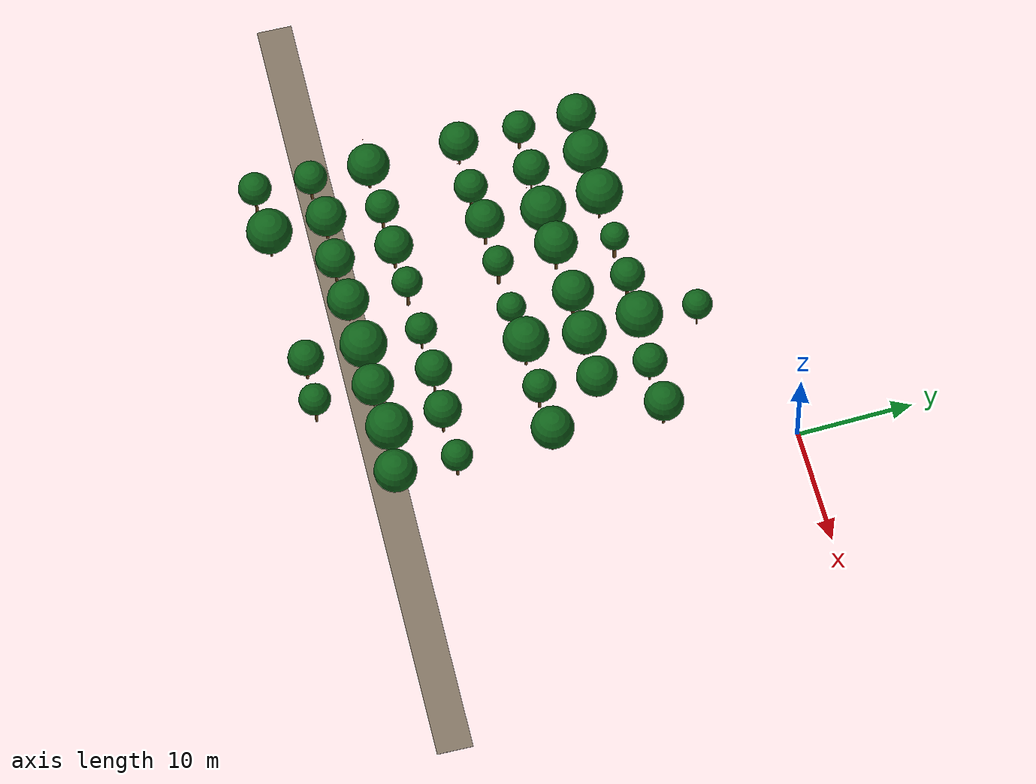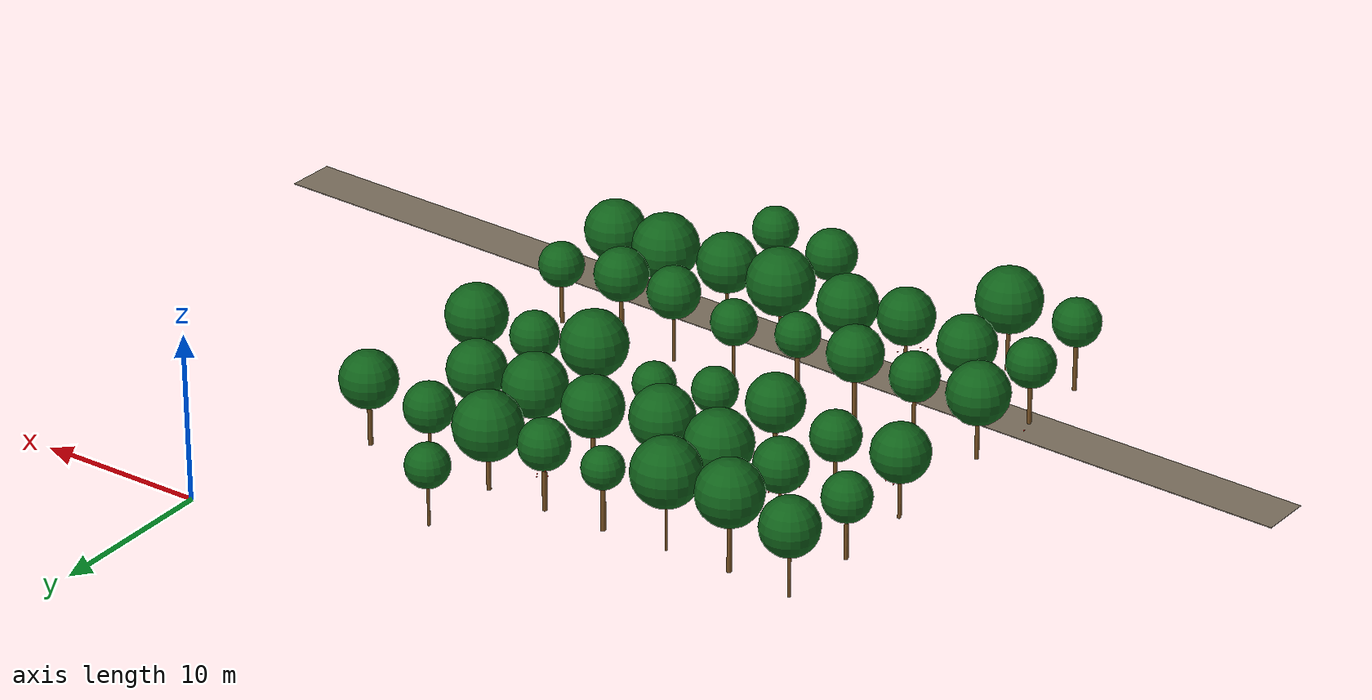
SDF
<sdf version="1.9">
 <world name="cheongsong_orchard">
  <model name="road_16">
   <static>true</static>
   <pose>-14.8 -33.6 0.02 0 0 -0.0368</pose>
   <link name="link">
    <collision name="collision">
     <geometry><box><size>68.8 3.0 0.04</size></box></geometry>
     <surface><friction><ode><mu>0.9</mu><mu2>0.9</mu2></ode></friction></surface>
    </collision>
    <visual name="visual">
     <geometry><box><size>68.8 3.0 0.04</size></box></geometry>
     <material><ambient>0.4 0.35 0.28 1</ambient><diffuse>0.5 0.45 0.38 1</diffuse></material>
    </visual>
   </link>
  </model>
  <model name="apple_tree_856">
   <static>true</static>
   <pose>-32.40 -38.11 0 0 0 0</pose>
   <link name="link">
    <collision name="trunk_col">
     <pose>0 0 1.43 0 0 0</pose>
     <geometry><cylinder><radius>0.127</radius><length>2.86</length></cylinder></geometry>
    </collision>
    <visual name="trunk_vis">
     <pose>0 0 1.43 0 0 0</pose>
     <geometry><cylinder><radius>0.127</radius><length>2.86</length></cylinder></geometry>
     <material><ambient>0.35 0.22 0.08 1</ambient><diffuse>0.45 0.30 0.12 1</diffuse></material>
    </visual>
    <collision name="canopy_col">
     <pose>0 0 4.27 0 0 0</pose>
     <geometry><sphere><radius>1.41</radius></sphere></geometry>
    </collision>
    <visual name="canopy_vis">
     <pose>0 0 4.27 0 0 0</pose>
     <geometry><sphere><radius>1.41</radius></sphere></geometry>
     <material><ambient>0.04 0.28 0.06 1</ambient><diffuse>0.06 0.38 0.10 1</diffuse></material>
    </visual>
   </link>
  </model>
  <model name="apple_tree_857">
   <static>true</static>
   <pose>-28.07 -37.95 0 0 0 0</pose>
   <link name="link">
    <collision name="trunk_col">
     <pose>0 0 1.26 0 0 0</pose>
     <geometry><cylinder><radius>0.116</radius><length>2.51</length></cylinder></geometry>
    </collision>
    <visual name="trunk_vis">
     <pose>0 0 1.26 0 0 0</pose>
     <geometry><cylinder><radius>0.116</radius><length>2.51</length></cylinder></geometry>
     <material><ambient>0.35 0.22 0.08 1</ambient><diffuse>0.45 0.30 0.12 1</diffuse></material>
    </visual>
    <collision name="canopy_col">
     <pose>0 0 4.46 0 0 0</pose>
     <geometry><sphere><radius>1.95</radius></sphere></geometry>
    </collision>
    <visual name="canopy_vis">
     <pose>0 0 4.46 0 0 0</pose>
     <geometry><sphere><radius>1.95</radius></sphere></geometry>
     <material><ambient>0.04 0.28 0.06 1</ambient><diffuse>0.06 0.38 0.10 1</diffuse></material>
    </visual>
   </link>
  </model>
  <model name="apple_tree_860">
   <static>true</static>
   <pose>-16.15 -37.93 0 0 0 0</pose>
   <link name="link">
    <collision name="trunk_col">
     <pose>0 0 1.15 0 0 0</pose>
     <geometry><cylinder><radius>0.128</radius><length>2.30</length></cylinder></geometry>
    </collision>
    <visual name="trunk_vis">
     <pose>0 0 1.15 0 0 0</pose>
     <geometry><cylinder><radius>0.128</radius><length>2.30</length></cylinder></geometry>
     <material><ambient>0.35 0.22 0.08 1</ambient><diffuse>0.45 0.30 0.12 1</diffuse></material>
    </visual>
    <collision name="canopy_col">
     <pose>0 0 3.82 0 0 0</pose>
     <geometry><sphere><radius>1.52</radius></sphere></geometry>
    </collision>
    <visual name="canopy_vis">
     <pose>0 0 3.82 0 0 0</pose>
     <geometry><sphere><radius>1.52</radius></sphere></geometry>
     <material><ambient>0.04 0.28 0.06 1</ambient><diffuse>0.06 0.38 0.10 1</diffuse></material>
    </visual>
   </link>
  </model>
  <model name="apple_tree_861">
   <static>true</static>
   <pose>-12.08 -38.20 0 0 0 0</pose>
   <link name="link">
    <collision name="trunk_col">
     <pose>0 0 1.41 0 0 0</pose>
     <geometry><cylinder><radius>0.111</radius><length>2.81</length></cylinder></geometry>
    </collision>
    <visual name="trunk_vis">
     <pose>0 0 1.41 0 0 0</pose>
     <geometry><cylinder><radius>0.111</radius><length>2.81</length></cylinder></geometry>
     <material><ambient>0.35 0.22 0.08 1</ambient><diffuse>0.45 0.30 0.12 1</diffuse></material>
    </visual>
    <collision name="canopy_col">
     <pose>0 0 4.16 0 0 0</pose>
     <geometry><sphere><radius>1.35</radius></sphere></geometry>
    </collision>
    <visual name="canopy_vis">
     <pose>0 0 4.16 0 0 0</pose>
     <geometry><sphere><radius>1.35</radius></sphere></geometry>
     <material><ambient>0.04 0.28 0.06 1</ambient><diffuse>0.06 0.38 0.10 1</diffuse></material>
    </visual>
   </link>
  </model>
  <model name="apple_tree_908">
   <static>true</static>
   <pose>-32.41 -33.28 0 0 0 0</pose>
   <link name="link">
    <collision name="trunk_col">
     <pose>0 0 1.19 0 0 0</pose>
     <geometry><cylinder><radius>0.125</radius><length>2.38</length></cylinder></geometry>
    </collision>
    <visual name="trunk_vis">
     <pose>0 0 1.19 0 0 0</pose>
     <geometry><cylinder><radius>0.125</radius><length>2.38</length></cylinder></geometry>
     <material><ambient>0.35 0.22 0.08 1</ambient><diffuse>0.45 0.30 0.12 1</diffuse></material>
    </visual>
    <collision name="canopy_col">
     <pose>0 0 3.82 0 0 0</pose>
     <geometry><sphere><radius>1.43</radius></sphere></geometry>
    </collision>
    <visual name="canopy_vis">
     <pose>0 0 3.82 0 0 0</pose>
     <geometry><sphere><radius>1.43</radius></sphere></geometry>
     <material><ambient>0.04 0.28 0.06 1</ambient><diffuse>0.06 0.38 0.10 1</diffuse></material>
    </visual>
   </link>
  </model>
  <model name="apple_tree_909">
   <static>true</static>
   <pose>-28.45 -32.97 0 0 0 0</pose>
   <link name="link">
    <collision name="trunk_col">
     <pose>0 0 1.09 0 0 0</pose>
     <geometry><cylinder><radius>0.146</radius><length>2.18</length></cylinder></geometry>
    </collision>
    <visual name="trunk_vis">
     <pose>0 0 1.09 0 0 0</pose>
     <geometry><cylinder><radius>0.146</radius><length>2.18</length></cylinder></geometry>
     <material><ambient>0.35 0.22 0.08 1</ambient><diffuse>0.45 0.30 0.12 1</diffuse></material>
    </visual>
    <collision name="canopy_col">
     <pose>0 0 3.89 0 0 0</pose>
     <geometry><sphere><radius>1.72</radius></sphere></geometry>
    </collision>
    <visual name="canopy_vis">
     <pose>0 0 3.89 0 0 0</pose>
     <geometry><sphere><radius>1.72</radius></sphere></geometry>
     <material><ambient>0.04 0.28 0.06 1</ambient><diffuse>0.06 0.38 0.10 1</diffuse></material>
    </visual>
   </link>
  </model>
  <model name="apple_tree_910">
   <static>true</static>
   <pose>-24.24 -33.28 0 0 0 0</pose>
   <link name="link">
    <collision name="trunk_col">
     <pose>0 0 1.29 0 0 0</pose>
     <geometry><cylinder><radius>0.103</radius><length>2.58</length></cylinder></geometry>
    </collision>
    <visual name="trunk_vis">
     <pose>0 0 1.29 0 0 0</pose>
     <geometry><cylinder><radius>0.103</radius><length>2.58</length></cylinder></geometry>
     <material><ambient>0.35 0.22 0.08 1</ambient><diffuse>0.45 0.30 0.12 1</diffuse></material>
    </visual>
    <collision name="canopy_col">
     <pose>0 0 4.25 0 0 0</pose>
     <geometry><sphere><radius>1.67</radius></sphere></geometry>
    </collision>
    <visual name="canopy_vis">
     <pose>0 0 4.25 0 0 0</pose>
     <geometry><sphere><radius>1.67</radius></sphere></geometry>
     <material><ambient>0.04 0.28 0.06 1</ambient><diffuse>0.06 0.38 0.10 1</diffuse></material>
    </visual>
   </link>
  </model>
  <model name="apple_tree_911">
   <static>true</static>
   <pose>-20.39 -33.17 0 0 0 0</pose>
   <link name="link">
    <collision name="trunk_col">
     <pose>0 0 1.06 0 0 0</pose>
     <geometry><cylinder><radius>0.092</radius><length>2.13</length></cylinder></geometry>
    </collision>
    <visual name="trunk_vis">
     <pose>0 0 1.06 0 0 0</pose>
     <geometry><cylinder><radius>0.092</radius><length>2.13</length></cylinder></geometry>
     <material><ambient>0.35 0.22 0.08 1</ambient><diffuse>0.45 0.30 0.12 1</diffuse></material>
    </visual>
    <collision name="canopy_col">
     <pose>0 0 3.89 0 0 0</pose>
     <geometry><sphere><radius>1.77</radius></sphere></geometry>
    </collision>
    <visual name="canopy_vis">
     <pose>0 0 3.89 0 0 0</pose>
     <geometry><sphere><radius>1.77</radius></sphere></geometry>
     <material><ambient>0.04 0.28 0.06 1</ambient><diffuse>0.06 0.38 0.10 1</diffuse></material>
    </visual>
   </link>
  </model>
  <model name="apple_tree_912">
   <static>true</static>
   <pose>-15.95 -33.01 0 0 0 0</pose>
   <link name="link">
    <collision name="trunk_col">
     <pose>0 0 1.05 0 0 0</pose>
     <geometry><cylinder><radius>0.088</radius><length>2.11</length></cylinder></geometry>
    </collision>
    <visual name="trunk_vis">
     <pose>0 0 1.05 0 0 0</pose>
     <geometry><cylinder><radius>0.088</radius><length>2.11</length></cylinder></geometry>
     <material><ambient>0.35 0.22 0.08 1</ambient><diffuse>0.45 0.30 0.12 1</diffuse></material>
    </visual>
    <collision name="canopy_col">
     <pose>0 0 4.10 0 0 0</pose>
     <geometry><sphere><radius>2.00</radius></sphere></geometry>
    </collision>
    <visual name="canopy_vis">
     <pose>0 0 4.10 0 0 0</pose>
     <geometry><sphere><radius>2.00</radius></sphere></geometry>
     <material><ambient>0.04 0.28 0.06 1</ambient><diffuse>0.06 0.38 0.10 1</diffuse></material>
    </visual>
   </link>
  </model>
  <model name="apple_tree_913">
   <static>true</static>
   <pose>-12.14 -33.22 0 0 0 0</pose>
   <link name="link">
    <collision name="trunk_col">
     <pose>0 0 1.16 0 0 0</pose>
     <geometry><cylinder><radius>0.094</radius><length>2.31</length></cylinder></geometry>
    </collision>
    <visual name="trunk_vis">
     <pose>0 0 1.16 0 0 0</pose>
     <geometry><cylinder><radius>0.094</radius><length>2.31</length></cylinder></geometry>
     <material><ambient>0.35 0.22 0.08 1</ambient><diffuse>0.45 0.30 0.12 1</diffuse></material>
    </visual>
    <collision name="canopy_col">
     <pose>0 0 4.08 0 0 0</pose>
     <geometry><sphere><radius>1.77</radius></sphere></geometry>
    </collision>
    <visual name="canopy_vis">
     <pose>0 0 4.08 0 0 0</pose>
     <geometry><sphere><radius>1.77</radius></sphere></geometry>
     <material><ambient>0.04 0.28 0.06 1</ambient><diffuse>0.06 0.38 0.10 1</diffuse></material>
    </visual>
   </link>
  </model>
  <model name="apple_tree_914">
   <static>true</static>
   <pose>-8.09 -32.90 0 0 0 0</pose>
   <link name="link">
    <collision name="trunk_col">
     <pose>0 0 1.05 0 0 0</pose>
     <geometry><cylinder><radius>0.111</radius><length>2.09</length></cylinder></geometry>
    </collision>
    <visual name="trunk_vis">
     <pose>0 0 1.05 0 0 0</pose>
     <geometry><cylinder><radius>0.111</radius><length>2.09</length></cylinder></geometry>
     <material><ambient>0.35 0.22 0.08 1</ambient><diffuse>0.45 0.30 0.12 1</diffuse></material>
    </visual>
    <collision name="canopy_col">
     <pose>0 0 4.07 0 0 0</pose>
     <geometry><sphere><radius>1.98</radius></sphere></geometry>
    </collision>
    <visual name="canopy_vis">
     <pose>0 0 4.07 0 0 0</pose>
     <geometry><sphere><radius>1.98</radius></sphere></geometry>
     <material><ambient>0.04 0.28 0.06 1</ambient><diffuse>0.06 0.38 0.10 1</diffuse></material>
    </visual>
   </link>
  </model>
  <model name="apple_tree_915">
   <static>true</static>
   <pose>-4.17 -33.42 0 0 0 0</pose>
   <link name="link">
    <collision name="trunk_col">
     <pose>0 0 0.99 0 0 0</pose>
     <geometry><cylinder><radius>0.145</radius><length>1.97</length></cylinder></geometry>
    </collision>
    <visual name="trunk_vis">
     <pose>0 0 0.99 0 0 0</pose>
     <geometry><cylinder><radius>0.145</radius><length>1.97</length></cylinder></geometry>
     <material><ambient>0.35 0.22 0.08 1</ambient><diffuse>0.45 0.30 0.12 1</diffuse></material>
    </visual>
    <collision name="canopy_col">
     <pose>0 0 3.79 0 0 0</pose>
     <geometry><sphere><radius>1.81</radius></sphere></geometry>
    </collision>
    <visual name="canopy_vis">
     <pose>0 0 3.79 0 0 0</pose>
     <geometry><sphere><radius>1.81</radius></sphere></geometry>
     <material><ambient>0.04 0.28 0.06 1</ambient><diffuse>0.06 0.38 0.10 1</diffuse></material>
    </visual>
   </link>
  </model>
  <model name="apple_tree_961">
   <static>true</static>
   <pose>-32.13 -28.29 0 0 0 0</pose>
   <link name="link">
    <collision name="trunk_col">
     <pose>0 0 1.12 0 0 0</pose>
     <geometry><cylinder><radius>0.124</radius><length>2.25</length></cylinder></geometry>
    </collision>
    <visual name="trunk_vis">
     <pose>0 0 1.12 0 0 0</pose>
     <geometry><cylinder><radius>0.124</radius><length>2.25</length></cylinder></geometry>
     <material><ambient>0.35 0.22 0.08 1</ambient><diffuse>0.45 0.30 0.12 1</diffuse></material>
    </visual>
    <collision name="canopy_col">
     <pose>0 0 4.05 0 0 0</pose>
     <geometry><sphere><radius>1.81</radius></sphere></geometry>
    </collision>
    <visual name="canopy_vis">
     <pose>0 0 4.05 0 0 0</pose>
     <geometry><sphere><radius>1.81</radius></sphere></geometry>
     <material><ambient>0.04 0.28 0.06 1</ambient><diffuse>0.06 0.38 0.10 1</diffuse></material>
    </visual>
   </link>
  </model>
  <model name="apple_tree_962">
   <static>true</static>
   <pose>-28.09 -28.18 0 0 0 0</pose>
   <link name="link">
    <collision name="trunk_col">
     <pose>0 0 1.21 0 0 0</pose>
     <geometry><cylinder><radius>0.113</radius><length>2.43</length></cylinder></geometry>
    </collision>
    <visual name="trunk_vis">
     <pose>0 0 1.21 0 0 0</pose>
     <geometry><cylinder><radius>0.113</radius><length>2.43</length></cylinder></geometry>
     <material><ambient>0.35 0.22 0.08 1</ambient><diffuse>0.45 0.30 0.12 1</diffuse></material>
    </visual>
    <collision name="canopy_col">
     <pose>0 0 3.86 0 0 0</pose>
     <geometry><sphere><radius>1.43</radius></sphere></geometry>
    </collision>
    <visual name="canopy_vis">
     <pose>0 0 3.86 0 0 0</pose>
     <geometry><sphere><radius>1.43</radius></sphere></geometry>
     <material><ambient>0.04 0.28 0.06 1</ambient><diffuse>0.06 0.38 0.10 1</diffuse></material>
    </visual>
   </link>
  </model>
  <model name="apple_tree_963">
   <static>true</static>
   <pose>-24.19 -28.19 0 0 0 0</pose>
   <link name="link">
    <collision name="trunk_col">
     <pose>0 0 1.24 0 0 0</pose>
     <geometry><cylinder><radius>0.137</radius><length>2.48</length></cylinder></geometry>
    </collision>
    <visual name="trunk_vis">
     <pose>0 0 1.24 0 0 0</pose>
     <geometry><cylinder><radius>0.137</radius><length>2.48</length></cylinder></geometry>
     <material><ambient>0.35 0.22 0.08 1</ambient><diffuse>0.45 0.30 0.12 1</diffuse></material>
    </visual>
    <collision name="canopy_col">
     <pose>0 0 4.11 0 0 0</pose>
     <geometry><sphere><radius>1.63</radius></sphere></geometry>
    </collision>
    <visual name="canopy_vis">
     <pose>0 0 4.11 0 0 0</pose>
     <geometry><sphere><radius>1.63</radius></sphere></geometry>
     <material><ambient>0.04 0.28 0.06 1</ambient><diffuse>0.06 0.38 0.10 1</diffuse></material>
    </visual>
   </link>
  </model>
  <model name="apple_tree_964">
   <static>true</static>
   <pose>-20.48 -28.03 0 0 0 0</pose>
   <link name="link">
    <collision name="trunk_col">
     <pose>0 0 1.46 0 0 0</pose>
     <geometry><cylinder><radius>0.142</radius><length>2.92</length></cylinder></geometry>
    </collision>
    <visual name="trunk_vis">
     <pose>0 0 1.46 0 0 0</pose>
     <geometry><cylinder><radius>0.142</radius><length>2.92</length></cylinder></geometry>
     <material><ambient>0.35 0.22 0.08 1</ambient><diffuse>0.45 0.30 0.12 1</diffuse></material>
    </visual>
    <collision name="canopy_col">
     <pose>0 0 4.21 0 0 0</pose>
     <geometry><sphere><radius>1.30</radius></sphere></geometry>
    </collision>
    <visual name="canopy_vis">
     <pose>0 0 4.21 0 0 0</pose>
     <geometry><sphere><radius>1.30</radius></sphere></geometry>
     <material><ambient>0.04 0.28 0.06 1</ambient><diffuse>0.06 0.38 0.10 1</diffuse></material>
    </visual>
   </link>
  </model>
  <model name="apple_tree_965">
   <static>true</static>
   <pose>-16.22 -27.98 0 0 0 0</pose>
   <link name="link">
    <collision name="trunk_col">
     <pose>0 0 1.19 0 0 0</pose>
     <geometry><cylinder><radius>0.083</radius><length>2.38</length></cylinder></geometry>
    </collision>
    <visual name="trunk_vis">
     <pose>0 0 1.19 0 0 0</pose>
     <geometry><cylinder><radius>0.083</radius><length>2.38</length></cylinder></geometry>
     <material><ambient>0.35 0.22 0.08 1</ambient><diffuse>0.45 0.30 0.12 1</diffuse></material>
    </visual>
    <collision name="canopy_col">
     <pose>0 0 3.72 0 0 0</pose>
     <geometry><sphere><radius>1.34</radius></sphere></geometry>
    </collision>
    <visual name="canopy_vis">
     <pose>0 0 3.72 0 0 0</pose>
     <geometry><sphere><radius>1.34</radius></sphere></geometry>
     <material><ambient>0.04 0.28 0.06 1</ambient><diffuse>0.06 0.38 0.10 1</diffuse></material>
    </visual>
   </link>
  </model>
  <model name="apple_tree_966">
   <static>true</static>
   <pose>-12.09 -28.02 0 0 0 0</pose>
   <link name="link">
    <collision name="trunk_col">
     <pose>0 0 1.41 0 0 0</pose>
     <geometry><cylinder><radius>0.091</radius><length>2.81</length></cylinder></geometry>
    </collision>
    <visual name="trunk_vis">
     <pose>0 0 1.41 0 0 0</pose>
     <geometry><cylinder><radius>0.091</radius><length>2.81</length></cylinder></geometry>
     <material><ambient>0.35 0.22 0.08 1</ambient><diffuse>0.45 0.30 0.12 1</diffuse></material>
    </visual>
    <collision name="canopy_col">
     <pose>0 0 4.36 0 0 0</pose>
     <geometry><sphere><radius>1.54</radius></sphere></geometry>
    </collision>
    <visual name="canopy_vis">
     <pose>0 0 4.36 0 0 0</pose>
     <geometry><sphere><radius>1.54</radius></sphere></geometry>
     <material><ambient>0.04 0.28 0.06 1</ambient><diffuse>0.06 0.38 0.10 1</diffuse></material>
    </visual>
   </link>
  </model>
  <model name="apple_tree_967">
   <static>true</static>
   <pose>-8.30 -28.26 0 0 0 0</pose>
   <link name="link">
    <collision name="trunk_col">
     <pose>0 0 1.35 0 0 0</pose>
     <geometry><cylinder><radius>0.120</radius><length>2.69</length></cylinder></geometry>
    </collision>
    <visual name="trunk_vis">
     <pose>0 0 1.35 0 0 0</pose>
     <geometry><cylinder><radius>0.120</radius><length>2.69</length></cylinder></geometry>
     <material><ambient>0.35 0.22 0.08 1</ambient><diffuse>0.45 0.30 0.12 1</diffuse></material>
    </visual>
    <collision name="canopy_col">
     <pose>0 0 4.29 0 0 0</pose>
     <geometry><sphere><radius>1.59</radius></sphere></geometry>
    </collision>
    <visual name="canopy_vis">
     <pose>0 0 4.29 0 0 0</pose>
     <geometry><sphere><radius>1.59</radius></sphere></geometry>
     <material><ambient>0.04 0.28 0.06 1</ambient><diffuse>0.06 0.38 0.10 1</diffuse></material>
    </visual>
   </link>
  </model>
  <model name="apple_tree_968">
   <static>true</static>
   <pose>-4.16 -28.17 0 0 0 0</pose>
   <link name="link">
    <collision name="trunk_col">
     <pose>0 0 1.20 0 0 0</pose>
     <geometry><cylinder><radius>0.119</radius><length>2.41</length></cylinder></geometry>
    </collision>
    <visual name="trunk_vis">
     <pose>0 0 1.20 0 0 0</pose>
     <geometry><cylinder><radius>0.119</radius><length>2.41</length></cylinder></geometry>
     <material><ambient>0.35 0.22 0.08 1</ambient><diffuse>0.45 0.30 0.12 1</diffuse></material>
    </visual>
    <collision name="canopy_col">
     <pose>0 0 3.73 0 0 0</pose>
     <geometry><sphere><radius>1.33</radius></sphere></geometry>
    </collision>
    <visual name="canopy_vis">
     <pose>0 0 3.73 0 0 0</pose>
     <geometry><sphere><radius>1.33</radius></sphere></geometry>
     <material><ambient>0.04 0.28 0.06 1</ambient><diffuse>0.06 0.38 0.10 1</diffuse></material>
    </visual>
   </link>
  </model>
  <model name="apple_tree_1020">
   <static>true</static>
   <pose>-32.25 -20.36 0 0 0 0</pose>
   <link name="link">
    <collision name="trunk_col">
     <pose>0 0 1.16 0 0 0</pose>
     <geometry><cylinder><radius>0.110</radius><length>2.32</length></cylinder></geometry>
    </collision>
    <visual name="trunk_vis">
     <pose>0 0 1.16 0 0 0</pose>
     <geometry><cylinder><radius>0.110</radius><length>2.32</length></cylinder></geometry>
     <material><ambient>0.35 0.22 0.08 1</ambient><diffuse>0.45 0.30 0.12 1</diffuse></material>
    </visual>
    <collision name="canopy_col">
     <pose>0 0 4.00 0 0 0</pose>
     <geometry><sphere><radius>1.68</radius></sphere></geometry>
    </collision>
    <visual name="canopy_vis">
     <pose>0 0 4.00 0 0 0</pose>
     <geometry><sphere><radius>1.68</radius></sphere></geometry>
     <material><ambient>0.04 0.28 0.06 1</ambient><diffuse>0.06 0.38 0.10 1</diffuse></material>
    </visual>
   </link>
  </model>
  <model name="apple_tree_1021">
   <static>true</static>
   <pose>-28.04 -20.46 0 0 0 0</pose>
   <link name="link">
    <collision name="trunk_col">
     <pose>0 0 1.10 0 0 0</pose>
     <geometry><cylinder><radius>0.123</radius><length>2.20</length></cylinder></geometry>
    </collision>
    <visual name="trunk_vis">
     <pose>0 0 1.10 0 0 0</pose>
     <geometry><cylinder><radius>0.123</radius><length>2.20</length></cylinder></geometry>
     <material><ambient>0.35 0.22 0.08 1</ambient><diffuse>0.45 0.30 0.12 1</diffuse></material>
    </visual>
    <collision name="canopy_col">
     <pose>0 0 3.64 0 0 0</pose>
     <geometry><sphere><radius>1.44</radius></sphere></geometry>
    </collision>
    <visual name="canopy_vis">
     <pose>0 0 3.64 0 0 0</pose>
     <geometry><sphere><radius>1.44</radius></sphere></geometry>
     <material><ambient>0.04 0.28 0.06 1</ambient><diffuse>0.06 0.38 0.10 1</diffuse></material>
    </visual>
   </link>
  </model>
  <model name="apple_tree_1022">
   <static>true</static>
   <pose>-24.25 -20.27 0 0 0 0</pose>
   <link name="link">
    <collision name="trunk_col">
     <pose>0 0 1.45 0 0 0</pose>
     <geometry><cylinder><radius>0.119</radius><length>2.89</length></cylinder></geometry>
    </collision>
    <visual name="trunk_vis">
     <pose>0 0 1.45 0 0 0</pose>
     <geometry><cylinder><radius>0.119</radius><length>2.89</length></cylinder></geometry>
     <material><ambient>0.35 0.22 0.08 1</ambient><diffuse>0.45 0.30 0.12 1</diffuse></material>
    </visual>
    <collision name="canopy_col">
     <pose>0 0 4.56 0 0 0</pose>
     <geometry><sphere><radius>1.66</radius></sphere></geometry>
    </collision>
    <visual name="canopy_vis">
     <pose>0 0 4.56 0 0 0</pose>
     <geometry><sphere><radius>1.66</radius></sphere></geometry>
     <material><ambient>0.04 0.28 0.06 1</ambient><diffuse>0.06 0.38 0.10 1</diffuse></material>
    </visual>
   </link>
  </model>
  <model name="apple_tree_1023">
   <static>true</static>
   <pose>-20.33 -20.19 0 0 0 0</pose>
   <link name="link">
    <collision name="trunk_col">
     <pose>0 0 1.43 0 0 0</pose>
     <geometry><cylinder><radius>0.141</radius><length>2.86</length></cylinder></geometry>
    </collision>
    <visual name="trunk_vis">
     <pose>0 0 1.43 0 0 0</pose>
     <geometry><cylinder><radius>0.141</radius><length>2.86</length></cylinder></geometry>
     <material><ambient>0.35 0.22 0.08 1</ambient><diffuse>0.45 0.30 0.12 1</diffuse></material>
    </visual>
    <collision name="canopy_col">
     <pose>0 0 4.16 0 0 0</pose>
     <geometry><sphere><radius>1.31</radius></sphere></geometry>
    </collision>
    <visual name="canopy_vis">
     <pose>0 0 4.16 0 0 0</pose>
     <geometry><sphere><radius>1.31</radius></sphere></geometry>
     <material><ambient>0.04 0.28 0.06 1</ambient><diffuse>0.06 0.38 0.10 1</diffuse></material>
    </visual>
   </link>
  </model>
  <model name="apple_tree_1024">
   <static>true</static>
   <pose>-16.30 -20.17 0 0 0 0</pose>
   <link name="link">
    <collision name="trunk_col">
     <pose>0 0 1.04 0 0 0</pose>
     <geometry><cylinder><radius>0.088</radius><length>2.09</length></cylinder></geometry>
    </collision>
    <visual name="trunk_vis">
     <pose>0 0 1.04 0 0 0</pose>
     <geometry><cylinder><radius>0.088</radius><length>2.09</length></cylinder></geometry>
     <material><ambient>0.35 0.22 0.08 1</ambient><diffuse>0.45 0.30 0.12 1</diffuse></material>
    </visual>
    <collision name="canopy_col">
     <pose>0 0 3.32 0 0 0</pose>
     <geometry><sphere><radius>1.24</radius></sphere></geometry>
    </collision>
    <visual name="canopy_vis">
     <pose>0 0 3.32 0 0 0</pose>
     <geometry><sphere><radius>1.24</radius></sphere></geometry>
     <material><ambient>0.04 0.28 0.06 1</ambient><diffuse>0.06 0.38 0.10 1</diffuse></material>
    </visual>
   </link>
  </model>
  <model name="apple_tree_1025">
   <static>true</static>
   <pose>-12.41 -19.97 0 0 0 0</pose>
   <link name="link">
    <collision name="trunk_col">
     <pose>0 0 1.38 0 0 0</pose>
     <geometry><cylinder><radius>0.132</radius><length>2.76</length></cylinder></geometry>
    </collision>
    <visual name="trunk_vis">
     <pose>0 0 1.38 0 0 0</pose>
     <geometry><cylinder><radius>0.132</radius><length>2.76</length></cylinder></geometry>
     <material><ambient>0.35 0.22 0.08 1</ambient><diffuse>0.45 0.30 0.12 1</diffuse></material>
    </visual>
    <collision name="canopy_col">
     <pose>0 0 4.70 0 0 0</pose>
     <geometry><sphere><radius>1.94</radius></sphere></geometry>
    </collision>
    <visual name="canopy_vis">
     <pose>0 0 4.70 0 0 0</pose>
     <geometry><sphere><radius>1.94</radius></sphere></geometry>
     <material><ambient>0.04 0.28 0.06 1</ambient><diffuse>0.06 0.38 0.10 1</diffuse></material>
    </visual>
   </link>
  </model>
  <model name="apple_tree_1026">
   <static>true</static>
   <pose>-8.32 -19.96 0 0 0 0</pose>
   <link name="link">
    <collision name="trunk_col">
     <pose>0 0 1.27 0 0 0</pose>
     <geometry><cylinder><radius>0.133</radius><length>2.55</length></cylinder></geometry>
    </collision>
    <visual name="trunk_vis">
     <pose>0 0 1.27 0 0 0</pose>
     <geometry><cylinder><radius>0.133</radius><length>2.55</length></cylinder></geometry>
     <material><ambient>0.35 0.22 0.08 1</ambient><diffuse>0.45 0.30 0.12 1</diffuse></material>
    </visual>
    <collision name="canopy_col">
     <pose>0 0 3.96 0 0 0</pose>
     <geometry><sphere><radius>1.41</radius></sphere></geometry>
    </collision>
    <visual name="canopy_vis">
     <pose>0 0 3.96 0 0 0</pose>
     <geometry><sphere><radius>1.41</radius></sphere></geometry>
     <material><ambient>0.04 0.28 0.06 1</ambient><diffuse>0.06 0.38 0.10 1</diffuse></material>
    </visual>
   </link>
  </model>
  <model name="apple_tree_1027">
   <static>true</static>
   <pose>-4.30 -19.95 0 0 0 0</pose>
   <link name="link">
    <collision name="trunk_col">
     <pose>0 0 1.13 0 0 0</pose>
     <geometry><cylinder><radius>0.150</radius><length>2.26</length></cylinder></geometry>
    </collision>
    <visual name="trunk_vis">
     <pose>0 0 1.13 0 0 0</pose>
     <geometry><cylinder><radius>0.150</radius><length>2.26</length></cylinder></geometry>
     <material><ambient>0.35 0.22 0.08 1</ambient><diffuse>0.45 0.30 0.12 1</diffuse></material>
    </visual>
    <collision name="canopy_col">
     <pose>0 0 4.07 0 0 0</pose>
     <geometry><sphere><radius>1.81</radius></sphere></geometry>
    </collision>
    <visual name="canopy_vis">
     <pose>0 0 4.07 0 0 0</pose>
     <geometry><sphere><radius>1.81</radius></sphere></geometry>
     <material><ambient>0.04 0.28 0.06 1</ambient><diffuse>0.06 0.38 0.10 1</diffuse></material>
    </visual>
   </link>
  </model>
  <model name="apple_tree_1079">
   <static>true</static>
   <pose>-32.33 -15.06 0 0 0 0</pose>
   <link name="link">
    <collision name="trunk_col">
     <pose>0 0 1.18 0 0 0</pose>
     <geometry><cylinder><radius>0.124</radius><length>2.35</length></cylinder></geometry>
    </collision>
    <visual name="trunk_vis">
     <pose>0 0 1.18 0 0 0</pose>
     <geometry><cylinder><radius>0.124</radius><length>2.35</length></cylinder></geometry>
     <material><ambient>0.35 0.22 0.08 1</ambient><diffuse>0.45 0.30 0.12 1</diffuse></material>
    </visual>
    <collision name="canopy_col">
     <pose>0 0 3.75 0 0 0</pose>
     <geometry><sphere><radius>1.40</radius></sphere></geometry>
    </collision>
    <visual name="canopy_vis">
     <pose>0 0 3.75 0 0 0</pose>
     <geometry><sphere><radius>1.40</radius></sphere></geometry>
     <material><ambient>0.04 0.28 0.06 1</ambient><diffuse>0.06 0.38 0.10 1</diffuse></material>
    </visual>
   </link>
  </model>
  <model name="apple_tree_1080">
   <static>true</static>
   <pose>-28.04 -15.17 0 0 0 0</pose>
   <link name="link">
    <collision name="trunk_col">
     <pose>0 0 1.36 0 0 0</pose>
     <geometry><cylinder><radius>0.090</radius><length>2.72</length></cylinder></geometry>
    </collision>
    <visual name="trunk_vis">
     <pose>0 0 1.36 0 0 0</pose>
     <geometry><cylinder><radius>0.090</radius><length>2.72</length></cylinder></geometry>
     <material><ambient>0.35 0.22 0.08 1</ambient><diffuse>0.45 0.30 0.12 1</diffuse></material>
    </visual>
    <collision name="canopy_col">
     <pose>0 0 4.26 0 0 0</pose>
     <geometry><sphere><radius>1.54</radius></sphere></geometry>
    </collision>
    <visual name="canopy_vis">
     <pose>0 0 4.26 0 0 0</pose>
     <geometry><sphere><radius>1.54</radius></sphere></geometry>
     <material><ambient>0.04 0.28 0.06 1</ambient><diffuse>0.06 0.38 0.10 1</diffuse></material>
    </visual>
   </link>
  </model>
  <model name="apple_tree_1081">
   <static>true</static>
   <pose>-24.03 -15.23 0 0 0 0</pose>
   <link name="link">
    <collision name="trunk_col">
     <pose>0 0 1.17 0 0 0</pose>
     <geometry><cylinder><radius>0.083</radius><length>2.33</length></cylinder></geometry>
    </collision>
    <visual name="trunk_vis">
     <pose>0 0 1.17 0 0 0</pose>
     <geometry><cylinder><radius>0.083</radius><length>2.33</length></cylinder></geometry>
     <material><ambient>0.35 0.22 0.08 1</ambient><diffuse>0.45 0.30 0.12 1</diffuse></material>
    </visual>
    <collision name="canopy_col">
     <pose>0 0 4.27 0 0 0</pose>
     <geometry><sphere><radius>1.94</radius></sphere></geometry>
    </collision>
    <visual name="canopy_vis">
     <pose>0 0 4.27 0 0 0</pose>
     <geometry><sphere><radius>1.94</radius></sphere></geometry>
     <material><ambient>0.04 0.28 0.06 1</ambient><diffuse>0.06 0.38 0.10 1</diffuse></material>
    </visual>
   </link>
  </model>
  <model name="apple_tree_1082">
   <static>true</static>
   <pose>-20.40 -15.14 0 0 0 0</pose>
   <link name="link">
    <collision name="trunk_col">
     <pose>0 0 1.45 0 0 0</pose>
     <geometry><cylinder><radius>0.149</radius><length>2.90</length></cylinder></geometry>
    </collision>
    <visual name="trunk_vis">
     <pose>0 0 1.45 0 0 0</pose>
     <geometry><cylinder><radius>0.149</radius><length>2.90</length></cylinder></geometry>
     <material><ambient>0.35 0.22 0.08 1</ambient><diffuse>0.45 0.30 0.12 1</diffuse></material>
    </visual>
    <collision name="canopy_col">
     <pose>0 0 4.74 0 0 0</pose>
     <geometry><sphere><radius>1.84</radius></sphere></geometry>
    </collision>
    <visual name="canopy_vis">
     <pose>0 0 4.74 0 0 0</pose>
     <geometry><sphere><radius>1.84</radius></sphere></geometry>
     <material><ambient>0.04 0.28 0.06 1</ambient><diffuse>0.06 0.38 0.10 1</diffuse></material>
    </visual>
   </link>
  </model>
  <model name="apple_tree_1083">
   <static>true</static>
   <pose>-15.96 -14.91 0 0 0 0</pose>
   <link name="link">
    <collision name="trunk_col">
     <pose>0 0 1.18 0 0 0</pose>
     <geometry><cylinder><radius>0.142</radius><length>2.36</length></cylinder></geometry>
    </collision>
    <visual name="trunk_vis">
     <pose>0 0 1.18 0 0 0</pose>
     <geometry><cylinder><radius>0.142</radius><length>2.36</length></cylinder></geometry>
     <material><ambient>0.35 0.22 0.08 1</ambient><diffuse>0.45 0.30 0.12 1</diffuse></material>
    </visual>
    <collision name="canopy_col">
     <pose>0 0 4.12 0 0 0</pose>
     <geometry><sphere><radius>1.76</radius></sphere></geometry>
    </collision>
    <visual name="canopy_vis">
     <pose>0 0 4.12 0 0 0</pose>
     <geometry><sphere><radius>1.76</radius></sphere></geometry>
     <material><ambient>0.04 0.28 0.06 1</ambient><diffuse>0.06 0.38 0.10 1</diffuse></material>
    </visual>
   </link>
  </model>
  <model name="apple_tree_1084">
   <static>true</static>
   <pose>-11.97 -15.06 0 0 0 0</pose>
   <link name="link">
    <collision name="trunk_col">
     <pose>0 0 1.13 0 0 0</pose>
     <geometry><cylinder><radius>0.104</radius><length>2.26</length></cylinder></geometry>
    </collision>
    <visual name="trunk_vis">
     <pose>0 0 1.13 0 0 0</pose>
     <geometry><cylinder><radius>0.104</radius><length>2.26</length></cylinder></geometry>
     <material><ambient>0.35 0.22 0.08 1</ambient><diffuse>0.45 0.30 0.12 1</diffuse></material>
    </visual>
    <collision name="canopy_col">
     <pose>0 0 4.12 0 0 0</pose>
     <geometry><sphere><radius>1.86</radius></sphere></geometry>
    </collision>
    <visual name="canopy_vis">
     <pose>0 0 4.12 0 0 0</pose>
     <geometry><sphere><radius>1.86</radius></sphere></geometry>
     <material><ambient>0.04 0.28 0.06 1</ambient><diffuse>0.06 0.38 0.10 1</diffuse></material>
    </visual>
   </link>
  </model>
  <model name="apple_tree_1085">
   <static>true</static>
   <pose>-7.95 -15.12 0 0 0 0</pose>
   <link name="link">
    <collision name="trunk_col">
     <pose>0 0 1.05 0 0 0</pose>
     <geometry><cylinder><radius>0.108</radius><length>2.09</length></cylinder></geometry>
    </collision>
    <visual name="trunk_vis">
     <pose>0 0 1.05 0 0 0</pose>
     <geometry><cylinder><radius>0.108</radius><length>2.09</length></cylinder></geometry>
     <material><ambient>0.35 0.22 0.08 1</ambient><diffuse>0.45 0.30 0.12 1</diffuse></material>
    </visual>
    <collision name="canopy_col">
     <pose>0 0 3.81 0 0 0</pose>
     <geometry><sphere><radius>1.72</radius></sphere></geometry>
    </collision>
    <visual name="canopy_vis">
     <pose>0 0 3.81 0 0 0</pose>
     <geometry><sphere><radius>1.72</radius></sphere></geometry>
     <material><ambient>0.04 0.28 0.06 1</ambient><diffuse>0.06 0.38 0.10 1</diffuse></material>
    </visual>
   </link>
  </model>
  <model name="apple_tree_1136">
   <static>true</static>
   <pose>-32.05 -10.09 0 0 0 0</pose>
   <link name="link">
    <collision name="trunk_col">
     <pose>0 0 1.27 0 0 0</pose>
     <geometry><cylinder><radius>0.092</radius><length>2.54</length></cylinder></geometry>
    </collision>
    <visual name="trunk_vis">
     <pose>0 0 1.27 0 0 0</pose>
     <geometry><cylinder><radius>0.092</radius><length>2.54</length></cylinder></geometry>
     <material><ambient>0.35 0.22 0.08 1</ambient><diffuse>0.45 0.30 0.12 1</diffuse></material>
    </visual>
    <collision name="canopy_col">
     <pose>0 0 4.21 0 0 0</pose>
     <geometry><sphere><radius>1.67</radius></sphere></geometry>
    </collision>
    <visual name="canopy_vis">
     <pose>0 0 4.21 0 0 0</pose>
     <geometry><sphere><radius>1.67</radius></sphere></geometry>
     <material><ambient>0.04 0.28 0.06 1</ambient><diffuse>0.06 0.38 0.10 1</diffuse></material>
    </visual>
   </link>
  </model>
  <model name="apple_tree_1137">
   <static>true</static>
   <pose>-28.04 -10.41 0 0 0 0</pose>
   <link name="link">
    <collision name="trunk_col">
     <pose>0 0 1.43 0 0 0</pose>
     <geometry><cylinder><radius>0.140</radius><length>2.86</length></cylinder></geometry>
    </collision>
    <visual name="trunk_vis">
     <pose>0 0 1.43 0 0 0</pose>
     <geometry><cylinder><radius>0.140</radius><length>2.86</length></cylinder></geometry>
     <material><ambient>0.35 0.22 0.08 1</ambient><diffuse>0.45 0.30 0.12 1</diffuse></material>
    </visual>
    <collision name="canopy_col">
     <pose>0 0 4.77 0 0 0</pose>
     <geometry><sphere><radius>1.90</radius></sphere></geometry>
    </collision>
    <visual name="canopy_vis">
     <pose>0 0 4.77 0 0 0</pose>
     <geometry><sphere><radius>1.90</radius></sphere></geometry>
     <material><ambient>0.04 0.28 0.06 1</ambient><diffuse>0.06 0.38 0.10 1</diffuse></material>
    </visual>
   </link>
  </model>
  <model name="apple_tree_1138">
   <static>true</static>
   <pose>-24.05 -10.32 0 0 0 0</pose>
   <link name="link">
    <collision name="trunk_col">
     <pose>0 0 1.39 0 0 0</pose>
     <geometry><cylinder><radius>0.082</radius><length>2.78</length></cylinder></geometry>
    </collision>
    <visual name="trunk_vis">
     <pose>0 0 1.39 0 0 0</pose>
     <geometry><cylinder><radius>0.082</radius><length>2.78</length></cylinder></geometry>
     <material><ambient>0.35 0.22 0.08 1</ambient><diffuse>0.45 0.30 0.12 1</diffuse></material>
    </visual>
    <collision name="canopy_col">
     <pose>0 0 4.75 0 0 0</pose>
     <geometry><sphere><radius>1.98</radius></sphere></geometry>
    </collision>
    <visual name="canopy_vis">
     <pose>0 0 4.75 0 0 0</pose>
     <geometry><sphere><radius>1.98</radius></sphere></geometry>
     <material><ambient>0.04 0.28 0.06 1</ambient><diffuse>0.06 0.38 0.10 1</diffuse></material>
    </visual>
   </link>
  </model>
  <model name="apple_tree_1139">
   <static>true</static>
   <pose>-20.08 -10.12 0 0 0 0</pose>
   <link name="link">
    <collision name="trunk_col">
     <pose>0 0 1.31 0 0 0</pose>
     <geometry><cylinder><radius>0.142</radius><length>2.61</length></cylinder></geometry>
    </collision>
    <visual name="trunk_vis">
     <pose>0 0 1.31 0 0 0</pose>
     <geometry><cylinder><radius>0.142</radius><length>2.61</length></cylinder></geometry>
     <material><ambient>0.35 0.22 0.08 1</ambient><diffuse>0.45 0.30 0.12 1</diffuse></material>
    </visual>
    <collision name="canopy_col">
     <pose>0 0 3.82 0 0 0</pose>
     <geometry><sphere><radius>1.20</radius></sphere></geometry>
    </collision>
    <visual name="canopy_vis">
     <pose>0 0 3.82 0 0 0</pose>
     <geometry><sphere><radius>1.20</radius></sphere></geometry>
     <material><ambient>0.04 0.28 0.06 1</ambient><diffuse>0.06 0.38 0.10 1</diffuse></material>
    </visual>
   </link>
  </model>
  <model name="apple_tree_1140">
   <static>true</static>
   <pose>-16.23 -10.09 0 0 0 0</pose>
   <link name="link">
    <collision name="trunk_col">
     <pose>0 0 1.29 0 0 0</pose>
     <geometry><cylinder><radius>0.140</radius><length>2.58</length></cylinder></geometry>
    </collision>
    <visual name="trunk_vis">
     <pose>0 0 1.29 0 0 0</pose>
     <geometry><cylinder><radius>0.140</radius><length>2.58</length></cylinder></geometry>
     <material><ambient>0.35 0.22 0.08 1</ambient><diffuse>0.45 0.30 0.12 1</diffuse></material>
    </visual>
    <collision name="canopy_col">
     <pose>0 0 4.04 0 0 0</pose>
     <geometry><sphere><radius>1.46</radius></sphere></geometry>
    </collision>
    <visual name="canopy_vis">
     <pose>0 0 4.04 0 0 0</pose>
     <geometry><sphere><radius>1.46</radius></sphere></geometry>
     <material><ambient>0.04 0.28 0.06 1</ambient><diffuse>0.06 0.38 0.10 1</diffuse></material>
    </visual>
   </link>
  </model>
  <model name="apple_tree_1141">
   <static>true</static>
   <pose>-12.44 -10.15 0 0 0 0</pose>
   <link name="link">
    <collision name="trunk_col">
     <pose>0 0 0.99 0 0 0</pose>
     <geometry><cylinder><radius>0.132</radius><length>1.97</length></cylinder></geometry>
    </collision>
    <visual name="trunk_vis">
     <pose>0 0 0.99 0 0 0</pose>
     <geometry><cylinder><radius>0.132</radius><length>1.97</length></cylinder></geometry>
     <material><ambient>0.35 0.22 0.08 1</ambient><diffuse>0.45 0.30 0.12 1</diffuse></material>
    </visual>
    <collision name="canopy_col">
     <pose>0 0 3.96 0 0 0</pose>
     <geometry><sphere><radius>1.98</radius></sphere></geometry>
    </collision>
    <visual name="canopy_vis">
     <pose>0 0 3.96 0 0 0</pose>
     <geometry><sphere><radius>1.98</radius></sphere></geometry>
     <material><ambient>0.04 0.28 0.06 1</ambient><diffuse>0.06 0.38 0.10 1</diffuse></material>
    </visual>
   </link>
  </model>
  <model name="apple_tree_1142">
   <static>true</static>
   <pose>-8.24 -10.44 0 0 0 0</pose>
   <link name="link">
    <collision name="trunk_col">
     <pose>0 0 1.10 0 0 0</pose>
     <geometry><cylinder><radius>0.092</radius><length>2.19</length></cylinder></geometry>
    </collision>
    <visual name="trunk_vis">
     <pose>0 0 1.10 0 0 0</pose>
     <geometry><cylinder><radius>0.092</radius><length>2.19</length></cylinder></geometry>
     <material><ambient>0.35 0.22 0.08 1</ambient><diffuse>0.45 0.30 0.12 1</diffuse></material>
    </visual>
    <collision name="canopy_col">
     <pose>0 0 3.64 0 0 0</pose>
     <geometry><sphere><radius>1.45</radius></sphere></geometry>
    </collision>
    <visual name="canopy_vis">
     <pose>0 0 3.64 0 0 0</pose>
     <geometry><sphere><radius>1.45</radius></sphere></geometry>
     <material><ambient>0.04 0.28 0.06 1</ambient><diffuse>0.06 0.38 0.10 1</diffuse></material>
    </visual>
   </link>
  </model>
  <model name="apple_tree_1143">
   <static>true</static>
   <pose>-4.11 -10.43 0 0 0 0</pose>
   <link name="link">
    <collision name="trunk_col">
     <pose>0 0 1.21 0 0 0</pose>
     <geometry><cylinder><radius>0.137</radius><length>2.42</length></cylinder></geometry>
    </collision>
    <visual name="trunk_vis">
     <pose>0 0 1.21 0 0 0</pose>
     <geometry><cylinder><radius>0.137</radius><length>2.42</length></cylinder></geometry>
     <material><ambient>0.35 0.22 0.08 1</ambient><diffuse>0.45 0.30 0.12 1</diffuse></material>
    </visual>
    <collision name="canopy_col">
     <pose>0 0 4.09 0 0 0</pose>
     <geometry><sphere><radius>1.67</radius></sphere></geometry>
    </collision>
    <visual name="canopy_vis">
     <pose>0 0 4.09 0 0 0</pose>
     <geometry><sphere><radius>1.67</radius></sphere></geometry>
     <material><ambient>0.04 0.28 0.06 1</ambient><diffuse>0.06 0.38 0.10 1</diffuse></material>
    </visual>
   </link>
  </model>
  <model name="apple_tree_1196">
   <static>true</static>
   <pose>-12.15 -5.19 0 0 0 0</pose>
   <link name="link">
    <collision name="trunk_col">
     <pose>0 0 1.20 0 0 0</pose>
     <geometry><cylinder><radius>0.083</radius><length>2.40</length></cylinder></geometry>
    </collision>
    <visual name="trunk_vis">
     <pose>0 0 1.20 0 0 0</pose>
     <geometry><cylinder><radius>0.083</radius><length>2.40</length></cylinder></geometry>
     <material><ambient>0.35 0.22 0.08 1</ambient><diffuse>0.45 0.30 0.12 1</diffuse></material>
    </visual>
    <collision name="canopy_col">
     <pose>0 0 3.67 0 0 0</pose>
     <geometry><sphere><radius>1.27</radius></sphere></geometry>
    </collision>
    <visual name="canopy_vis">
     <pose>0 0 3.67 0 0 0</pose>
     <geometry><sphere><radius>1.27</radius></sphere></geometry>
     <material><ambient>0.04 0.28 0.06 1</ambient><diffuse>0.06 0.38 0.10 1</diffuse></material>
    </visual>
   </link>
  </model>
  <model name="apple_860_0">
   <static>true</static>
   <pose>-15.26 -37.95 2.08 0 0 0</pose>
   <link name="link">
    <visual name="visual">
     <geometry><sphere><radius>0.04</radius></sphere></geometry>
     <material><ambient>0.7 0.05 0.02 1</ambient><diffuse>0.9 0.10 0.05 1</diffuse></material>
    </visual>
   </link>
  </model>
  <model name="apple_860_4">
   <static>true</static>
   <pose>-16.35 -37.30 1.81 0 0 0</pose>
   <link name="link">
    <visual name="visual">
     <geometry><sphere><radius>0.04</radius></sphere></geometry>
     <material><ambient>0.7 0.05 0.02 1</ambient><diffuse>0.9 0.10 0.05 1</diffuse></material>
    </visual>
   </link>
  </model>
  <model name="apple_910_0">
   <static>true</static>
   <pose>-25.10 -33.45 2.45 0 0 0</pose>
   <link name="link">
    <visual name="visual">
     <geometry><sphere><radius>0.04</radius></sphere></geometry>
     <material><ambient>0.7 0.05 0.02 1</ambient><diffuse>0.9 0.10 0.05 1</diffuse></material>
    </visual>
   </link>
  </model>
  <model name="apple_910_1">
   <static>true</static>
   <pose>-25.37 -33.79 2.27 0 0 0</pose>
   <link name="link">
    <visual name="visual">
     <geometry><sphere><radius>0.04</radius></sphere></geometry>
     <material><ambient>0.7 0.05 0.02 1</ambient><diffuse>0.9 0.10 0.05 1</diffuse></material>
    </visual>
   </link>
  </model>
  <model name="apple_910_2">
   <static>true</static>
   <pose>-24.11 -33.80 2.35 0 0 0</pose>
   <link name="link">
    <visual name="visual">
     <geometry><sphere><radius>0.04</radius></sphere></geometry>
     <material><ambient>0.7 0.05 0.02 1</ambient><diffuse>0.9 0.10 0.05 1</diffuse></material>
    </visual>
   </link>
  </model>
  <model name="apple_910_3">
   <static>true</static>
   <pose>-24.52 -32.14 2.08 0 0 0</pose>
   <link name="link">
    <visual name="visual">
     <geometry><sphere><radius>0.04</radius></sphere></geometry>
     <material><ambient>0.7 0.05 0.02 1</ambient><diffuse>0.9 0.10 0.05 1</diffuse></material>
    </visual>
   </link>
  </model>
  <model name="apple_910_4">
   <static>true</static>
   <pose>-24.52 -32.02 2.64 0 0 0</pose>
   <link name="link">
    <visual name="visual">
     <geometry><sphere><radius>0.04</radius></sphere></geometry>
     <material><ambient>0.7 0.05 0.02 1</ambient><diffuse>0.9 0.10 0.05 1</diffuse></material>
    </visual>
   </link>
  </model>
  <model name="apple_960_2">
   <static>true</static>
   <pose>-35.25 -28.02 2.83 0 0 0</pose>
   <link name="link">
    <visual name="visual">
     <geometry><sphere><radius>0.04</radius></sphere></geometry>
     <material><ambient>0.7 0.05 0.02 1</ambient><diffuse>0.9 0.10 0.05 1</diffuse></material>
    </visual>
   </link>
  </model>
  <model name="apple_1020_0">
   <static>true</static>
   <pose>-31.95 -20.16 2.04 0 0 0</pose>
   <link name="link">
    <visual name="visual">
     <geometry><sphere><radius>0.04</radius></sphere></geometry>
     <material><ambient>0.7 0.05 0.02 1</ambient><diffuse>0.9 0.10 0.05 1</diffuse></material>
    </visual>
   </link>
  </model>
  <model name="apple_1020_1">
   <static>true</static>
   <pose>-32.13 -19.12 2.82 0 0 0</pose>
   <link name="link">
    <visual name="visual">
     <geometry><sphere><radius>0.04</radius></sphere></geometry>
     <material><ambient>0.7 0.05 0.02 1</ambient><diffuse>0.9 0.10 0.05 1</diffuse></material>
    </visual>
   </link>
  </model>
  <model name="apple_1020_2">
   <static>true</static>
   <pose>-31.04 -20.85 2.36 0 0 0</pose>
   <link name="link">
    <visual name="visual">
     <geometry><sphere><radius>0.04</radius></sphere></geometry>
     <material><ambient>0.7 0.05 0.02 1</ambient><diffuse>0.9 0.10 0.05 1</diffuse></material>
    </visual>
   </link>
  </model>
  <model name="apple_1080_0">
   <static>true</static>
   <pose>-27.08 -15.88 2.66 0 0 0</pose>
   <link name="link">
    <visual name="visual">
     <geometry><sphere><radius>0.04</radius></sphere></geometry>
     <material><ambient>0.7 0.05 0.02 1</ambient><diffuse>0.9 0.10 0.05 1</diffuse></material>
    </visual>
   </link>
  </model>
  <model name="apple_1080_1">
   <static>true</static>
   <pose>-28.53 -16.25 2.58 0 0 0</pose>
   <link name="link">
    <visual name="visual">
     <geometry><sphere><radius>0.04</radius></sphere></geometry>
     <material><ambient>0.7 0.05 0.02 1</ambient><diffuse>0.9 0.10 0.05 1</diffuse></material>
    </visual>
   </link>
  </model>
  <model name="apple_1080_2">
   <static>true</static>
   <pose>-27.92 -16.13 2.66 0 0 0</pose>
   <link name="link">
    <visual name="visual">
     <geometry><sphere><radius>0.04</radius></sphere></geometry>
     <material><ambient>0.7 0.05 0.02 1</ambient><diffuse>0.9 0.10 0.05 1</diffuse></material>
    </visual>
   </link>
  </model>
  <model name="apple_1080_3">
   <static>true</static>
   <pose>-27.48 -14.91 2.53 0 0 0</pose>
   <link name="link">
    <visual name="visual">
     <geometry><sphere><radius>0.04</radius></sphere></geometry>
     <material><ambient>0.7 0.05 0.02 1</ambient><diffuse>0.9 0.10 0.05 1</diffuse></material>
    </visual>
   </link>
  </model>
  <model name="apple_1140_0">
   <static>true</static>
   <pose>-16.37 -9.21 2.48 0 0 0</pose>
   <link name="link">
    <visual name="visual">
     <geometry><sphere><radius>0.04</radius></sphere></geometry>
     <material><ambient>0.7 0.05 0.02 1</ambient><diffuse>0.9 0.10 0.05 1</diffuse></material>
    </visual>
   </link>
  </model>
  <model name="apple_1140_1">
   <static>true</static>
   <pose>-16.85 -9.35 2.90 0 0 0</pose>
   <link name="link">
    <visual name="visual">
     <geometry><sphere><radius>0.04</radius></sphere></geometry>
     <material><ambient>0.7 0.05 0.02 1</ambient><diffuse>0.9 0.10 0.05 1</diffuse></material>
    </visual>
   </link>
  </model>
  <model name="apple_1140_2">
   <static>true</static>
   <pose>-16.15 -9.55 2.43 0 0 0</pose>
   <link name="link">
    <visual name="visual">
     <geometry><sphere><radius>0.04</radius></sphere></geometry>
     <material><ambient>0.7 0.05 0.02 1</ambient><diffuse>0.9 0.10 0.05 1</diffuse></material>
    </visual>
   </link>
  </model>
  <model name="apple_1140_3">
   <static>true</static>
   <pose>-16.52 -9.99 2.20 0 0 0</pose>
   <link name="link">
    <visual name="visual">
     <geometry><sphere><radius>0.04</radius></sphere></geometry>
     <material><ambient>0.7 0.05 0.02 1</ambient><diffuse>0.9 0.10 0.05 1</diffuse></material>
    </visual>
   </link>
  </model>
 </world>
</sdf>
